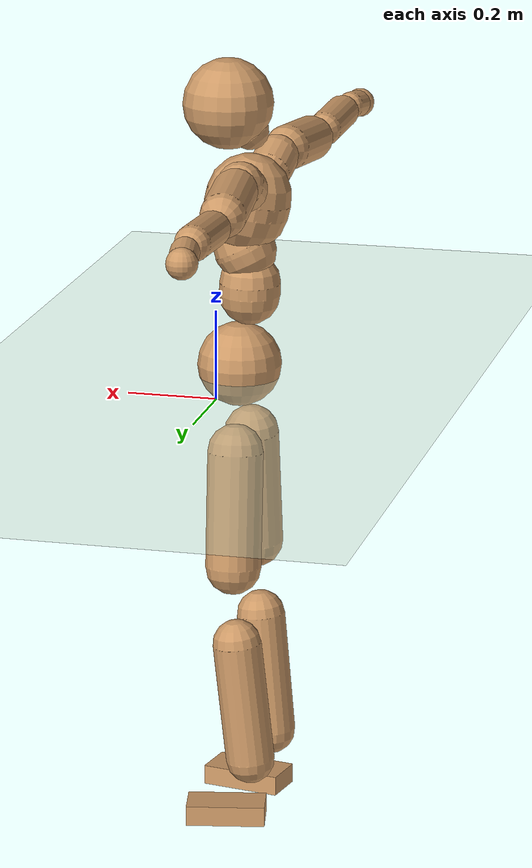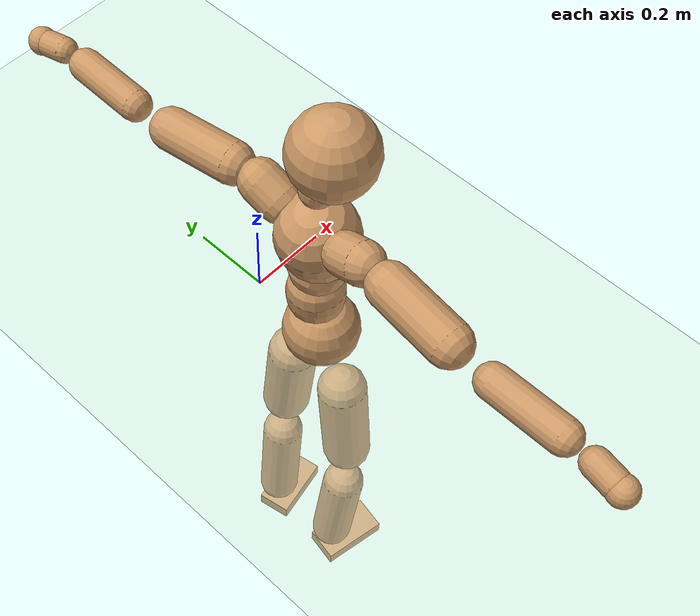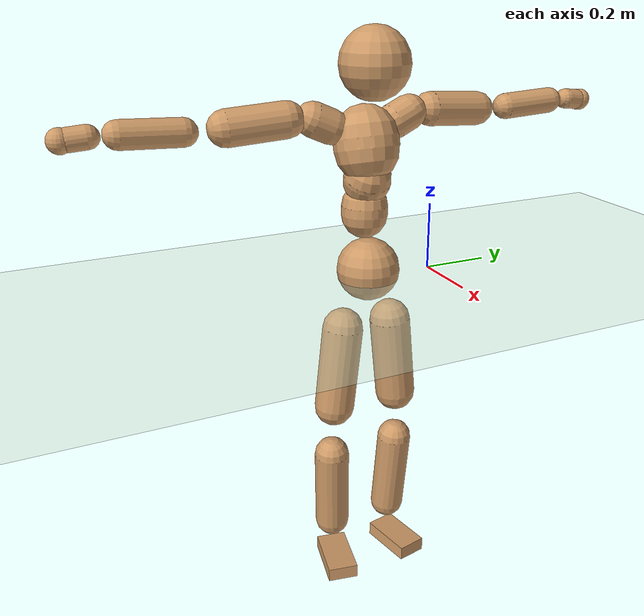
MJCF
<mujoco model="humanoid">
  <compiler coordinate="local" angle="radian"/>
  <default>
    <joint damping="0.0" armature="0.01" stiffness="0.0" limited="true"/>
    <geom conaffinity="1" condim="3" contype="7" margin="0.001" rgba="0.8 0.6 .4 1"/>
  </default>
  <asset>
    <texture type="skybox" builtin="gradient" rgb1=".4 .5 .6" rgb2="0 0 0" width="100" height="100"/>
    <texture builtin="flat" height="1278" mark="cross" markrgb="1 1 1" name="texgeom" random="0.01" rgb1="0.8 0.6 0.4" rgb2="0.8 0.6 0.4" type="cube" width="127"/>
    <texture builtin="checker" height="100" name="texplane" rgb1="0 0 0" rgb2="0.8 0.8 0.8" type="2d" width="100"/>
    <material name="MatPlane" reflectance="0.5" shininess="1" specular="1" texrepeat="60 60" texture="texplane"/>
    <material name="geom" texture="texgeom" texuniform="true"/>
  </asset>
  <worldbody>
    <light cutoff="100" diffuse="1 1 1" dir="-0 0 -1.3" directional="true" exponent="1" pos="0 0 1.3" specular=".1 .1 .1"/>
    <geom conaffinity="1" condim="3" name="floor" pos="0 0 0" rgba="0.8 0.9 0.8 1" size="100 100 .2" type="plane" material="MatPlane"/>
    <body name="Pelvis" pos="0.0004 -0.207 0.0259">
      <freejoint name="Pelvis"/>
      <geom type="sphere" contype="1" conaffinity="1" density="500" size="0.0945" pos="0.0000 0.0000 0.0000" name="Pelvis"/>
      <body name="L_Hip" pos="-0.0108 0.0737 -0.0943">
        <joint name="L_Hip_x" type="hinge" pos="0 0 0" axis="1 0 0" stiffness="800" damping="80" armature="0.02" range="-180.0000 180.0000"/>
        <joint name="L_Hip_y" type="hinge" pos="0 0 0" axis="0 1 0" stiffness="800" damping="80" armature="0.02" range="-180.0000 180.0000"/>
        <joint name="L_Hip_z" type="hinge" pos="0 0 0" axis="0 0 1" stiffness="800" damping="80" armature="0.02" range="-180.0000 180.0000"/>
        <geom type="capsule" contype="1" conaffinity="1" density="500" fromto="-0.0004 0.0085 -0.0869 -0.0015 0.0339 -0.3476" size="0.063" name="L_Hip"/>
        <body name="L_Knee" pos="-0.0019 0.0424 -0.4346">
          <joint name="L_Knee_x" type="hinge" pos="0 0 0" axis="1 0 0" stiffness="800" damping="80" armature="0.02" range="-180.0000 180.0000"/>
          <joint name="L_Knee_y" type="hinge" pos="0 0 0" axis="0 1 0" stiffness="800" damping="80" armature="0.02" range="-180.0000 180.0000"/>
          <joint name="L_Knee_z" type="hinge" pos="0 0 0" axis="0 0 1" stiffness="800" damping="80" armature="0.02" range="-180.0000 180.0000"/>
          <geom type="capsule" contype="1" conaffinity="1" density="500" fromto="-0.0096 -0.0026 -0.0925 -0.0384 -0.0105 -0.3700" size="0.055" name="L_Knee"/>
          <body name="L_Ankle" pos="-0.048 -0.0131 -0.4625">
            <joint name="L_Ankle_x" type="hinge" pos="0 0 0" axis="1 0 0" stiffness="800" damping="80" armature="0.02" range="-180.0000 180.0000"/>
            <joint name="L_Ankle_y" type="hinge" pos="0 0 0" axis="0 1 0" stiffness="800" damping="80" armature="0.02" range="-180.0000 180.0000"/>
            <joint name="L_Ankle_z" type="hinge" pos="0 0 0" axis="0 0 1" stiffness="800" damping="80" armature="0.02" range="-180.0000 180.0000"/>
            <geom type="box" contype="1" conaffinity="1" density="500" pos="0.0635 0.0125 -0.0322" size="0.0889 0.0466 0.0227" quat="0.9953 0.0000 0.0000 0.0970" name="L_Ankle"/>
            <body name="L_Toe" pos="0.127 0.025 -0.0644">
              <joint name="L_Toe_x" type="hinge" pos="0 0 0" axis="1 0 0" stiffness="500" damping="50" armature="0.02" range="-180.0000 180.0000"/>
              <joint name="L_Toe_y" type="hinge" pos="0 0 0" axis="0 1 0" stiffness="500" damping="50" armature="0.02" range="-180.0000 180.0000"/>
              <joint name="L_Toe_z" type="hinge" pos="0 0 0" axis="0 0 1" stiffness="500" damping="50" armature="0.02" range="-180.0000 180.0000"/>
              <geom type="box" contype="1" conaffinity="1" density="500" pos="0.0000 0.0000 0.0321" size="0.0009 0.0023 0.0011" quat="0.9947 0.0000 0.0000 0.1030" name="L_Toe"/>
            </body>
          </body>
        </body>
      </body>
      <body name="R_Hip" pos="-0.0063 -0.0709 -0.0929">
        <joint name="R_Hip_x" type="hinge" pos="0 0 0" axis="1 0 0" stiffness="800" damping="80" armature="0.02" range="-180.0000 180.0000"/>
        <joint name="R_Hip_y" type="hinge" pos="0 0 0" axis="0 1 0" stiffness="800" damping="80" armature="0.02" range="-180.0000 180.0000"/>
        <joint name="R_Hip_z" type="hinge" pos="0 0 0" axis="0 0 1" stiffness="800" damping="80" armature="0.02" range="-180.0000 180.0000"/>
        <geom type="capsule" contype="1" conaffinity="1" density="500" fromto="-0.0010 -0.0099 -0.0886 -0.0040 -0.0397 -0.3543" size="0.062" name="R_Hip"/>
        <body name="R_Knee" pos="-0.0049 -0.0496 -0.4428">
          <joint name="R_Knee_x" type="hinge" pos="0 0 0" axis="1 0 0" stiffness="800" damping="80" armature="0.02" range="-180.0000 180.0000"/>
          <joint name="R_Knee_y" type="hinge" pos="0 0 0" axis="0 1 0" stiffness="800" damping="80" armature="0.02" range="-180.0000 180.0000"/>
          <joint name="R_Knee_z" type="hinge" pos="0 0 0" axis="0 0 1" stiffness="800" damping="80" armature="0.02" range="-180.0000 180.0000"/>
          <geom type="capsule" contype="1" conaffinity="1" density="500" fromto="-0.0091 0.0034 -0.0926 -0.0363 0.0136 -0.3704" size="0.0554" name="R_Knee"/>
          <body name="R_Ankle" pos="-0.0454 0.0169 -0.463">
            <joint name="R_Ankle_x" type="hinge" pos="0 0 0" axis="1 0 0" stiffness="800" damping="80" armature="0.02" range="-180.0000 180.0000"/>
            <joint name="R_Ankle_y" type="hinge" pos="0 0 0" axis="0 1 0" stiffness="800" damping="80" armature="0.02" range="-180.0000 180.0000"/>
            <joint name="R_Ankle_z" type="hinge" pos="0 0 0" axis="0 0 1" stiffness="800" damping="80" armature="0.02" range="-180.0000 180.0000"/>
            <geom type="box" contype="1" conaffinity="1" density="500" pos="0.0654 -0.0124 -0.0273" size="0.091 0.0483 0.0222" quat="0.9956 0.0000 0.0000 -0.0939" name="R_Ankle"/>
            <body name="R_Toe" pos="0.1308 -0.0249 -0.0546">
              <joint name="R_Toe_x" type="hinge" pos="0 0 0" axis="1 0 0" stiffness="500" damping="50" armature="0.02" range="-180.0000 180.0000"/>
              <joint name="R_Toe_y" type="hinge" pos="0 0 0" axis="0 1 0" stiffness="500" damping="50" armature="0.02" range="-180.0000 180.0000"/>
              <joint name="R_Toe_z" type="hinge" pos="0 0 0" axis="0 0 1" stiffness="500" damping="50" armature="0.02" range="-180.0000 180.0000"/>
              <geom type="box" contype="1" conaffinity="1" density="500" pos="0.0000 0.0000 0.0301" size="0.0008 0.0024 0.0012" quat="0.9964 0.0000 0.0000 -0.0852" name="R_Toe"/>
            </body>
          </body>
        </body>
      </body>
      <body name="Torso" pos="-0.022 -0.0032 0.1083">
        <joint name="Torso_x" type="hinge" pos="0 0 0" axis="1 0 0" stiffness="1000" damping="100" armature="0.02" range="-180.0000 180.0000"/>
        <joint name="Torso_y" type="hinge" pos="0 0 0" axis="0 1 0" stiffness="1000" damping="100" armature="0.02" range="-180.0000 180.0000"/>
        <joint name="Torso_z" type="hinge" pos="0 0 0" axis="0 0 1" stiffness="1000" damping="100" armature="0.02" range="-180.0000 180.0000"/>
        <geom type="capsule" contype="1" conaffinity="1" density="500" fromto="-0.0016 0.0023 0.0796 -0.0011 0.0015 0.0531" size="0.0685" name="Torso"/>
        <body name="Spine" pos="-0.0027 0.0039 0.1327">
          <joint name="Spine_x" type="hinge" pos="0 0 0" axis="1 0 0" stiffness="1000" damping="100" armature="0.02" range="-180.0000 180.0000"/>
          <joint name="Spine_y" type="hinge" pos="0 0 0" axis="0 1 0" stiffness="1000" damping="100" armature="0.02" range="-180.0000 180.0000"/>
          <joint name="Spine_z" type="hinge" pos="0 0 0" axis="0 0 1" stiffness="1000" damping="100" armature="0.02" range="-180.0000 180.0000"/>
          <geom type="capsule" contype="1" conaffinity="1" density="500" fromto="0.0151 0.0007 0.0307 0.0100 0.0005 0.0205" size="0.0693" name="Spine"/>
          <body name="Chest" pos="0.0251 0.0012 0.0512">
            <joint name="Chest_x" type="hinge" pos="0 0 0" axis="1 0 0" stiffness="1000" damping="100" armature="0.02" range="-180.0000 180.0000"/>
            <joint name="Chest_y" type="hinge" pos="0 0 0" axis="0 1 0" stiffness="1000" damping="100" armature="0.02" range="-180.0000 180.0000"/>
            <joint name="Chest_z" type="hinge" pos="0 0 0" axis="0 0 1" stiffness="1000" damping="100" armature="0.02" range="-180.0000 180.0000"/>
            <geom type="capsule" contype="1" conaffinity="1" density="500" fromto="-0.0226 -0.0011 0.0924 -0.0151 -0.0007 0.0616" size="0.0951" name="Chest"/>
            <body name="Neck" pos="-0.0368 -0.0034 0.2227">
              <joint name="Neck_x" type="hinge" pos="0 0 0" axis="1 0 0" stiffness="500" damping="50" armature="0.02" range="-180.0000 180.0000"/>
              <joint name="Neck_y" type="hinge" pos="0 0 0" axis="0 1 0" stiffness="500" damping="50" armature="0.02" range="-180.0000 180.0000"/>
              <joint name="Neck_z" type="hinge" pos="0 0 0" axis="0 0 1" stiffness="500" damping="50" armature="0.02" range="-180.0000 180.0000"/>
              <geom type="capsule" contype="1" conaffinity="1" density="500" fromto="0.0121 0.0012 0.0150 0.0482 0.0049 0.0601" size="0.0418" name="Neck"/>
              <body name="Head" pos="0.0603 0.0061 0.0752">
                <joint name="Head_x" type="hinge" pos="0 0 0" axis="1 0 0" stiffness="500" damping="50" armature="0.02" range="-180.0000 180.0000"/>
                <joint name="Head_y" type="hinge" pos="0 0 0" axis="0 1 0" stiffness="500" damping="50" armature="0.02" range="-180.0000 180.0000"/>
                <joint name="Head_z" type="hinge" pos="0 0 0" axis="0 0 1" stiffness="500" damping="50" armature="0.02" range="-180.0000 180.0000"/>
                <geom type="sphere" contype="1" conaffinity="1" density="500" size="0.1006" pos="0.0000 0.0000 0.0000" name="Head"/>
              </body>
            </body>
            <body name="L_Thorax" pos="-0.0352 0.0773 0.1209">
              <joint name="L_Thorax_x" type="hinge" pos="0 0 0" axis="1 0 0" stiffness="500" damping="50" armature="0.02" range="-180.0000 180.0000"/>
              <joint name="L_Thorax_y" type="hinge" pos="0 0 0" axis="0 1 0" stiffness="500" damping="50" armature="0.02" range="-180.0000 180.0000"/>
              <joint name="L_Thorax_z" type="hinge" pos="0 0 0" axis="0 0 1" stiffness="500" damping="50" armature="0.02" range="-180.0000 180.0000"/>
              <geom type="capsule" contype="1" conaffinity="1" density="500" fromto="-0.0012 0.0171 0.0076 -0.0048 0.0686 0.0303" size="0.0511" name="L_Thorax"/>
              <body name="L_Shoulder" pos="-0.006 0.0857 0.0378">
                <joint name="L_Shoulder_x" type="hinge" pos="0 0 0" axis="1 0 0" stiffness="500" damping="50" armature="0.02" range="-720.0000 720.0000"/>
                <joint name="L_Shoulder_y" type="hinge" pos="0 0 0" axis="0 1 0" stiffness="500" damping="50" armature="0.02" range="-720.0000 720.0000"/>
                <joint name="L_Shoulder_z" type="hinge" pos="0 0 0" axis="0 0 1" stiffness="500" damping="50" armature="0.02" range="-720.0000 720.0000"/>
                <geom type="capsule" contype="1" conaffinity="1" density="500" fromto="-0.0060 0.0575 -0.0044 -0.0238 0.2298 -0.0174" size="0.0497" name="L_Shoulder"/>
                <body name="L_Elbow" pos="-0.0298 0.2873 -0.0218">
                  <joint name="L_Elbow_x" type="hinge" pos="0 0 0" axis="1 0 0" stiffness="500" damping="50" armature="0.02" range="-720.0000 720.0000"/>
                  <joint name="L_Elbow_y" type="hinge" pos="0 0 0" axis="0 1 0" stiffness="500" damping="50" armature="0.02" range="-720.0000 720.0000"/>
                  <joint name="L_Elbow_z" type="hinge" pos="0 0 0" axis="0 0 1" stiffness="500" damping="50" armature="0.02" range="-720.0000 720.0000"/>
                  <geom type="capsule" contype="1" conaffinity="1" density="500" fromto="-0.0002 0.0541 0.0026 -0.0008 0.2164 0.0104" size="0.0388" name="L_Elbow"/>
                  <body name="L_Wrist" pos="-0.0009 0.2704 0.0129">
                    <joint name="L_Wrist_x" type="hinge" pos="0 0 0" axis="1 0 0" stiffness="300" damping="30" armature="0.02" range="-180.0000 180.0000"/>
                    <joint name="L_Wrist_y" type="hinge" pos="0 0 0" axis="0 1 0" stiffness="300" damping="30" armature="0.02" range="-180.0000 180.0000"/>
                    <joint name="L_Wrist_z" type="hinge" pos="0 0 0" axis="0 0 1" stiffness="300" damping="30" armature="0.02" range="-180.0000 180.0000"/>
                    <geom type="capsule" contype="1" conaffinity="1" density="500" fromto="-0.0028 0.0165 -0.0021 -0.0112 0.0662 -0.0083" size="0.0307" name="L_Wrist"/>
                    <body name="L_Hand" pos="-0.014 0.0827 -0.0104">
                      <joint name="L_Hand_x" type="hinge" pos="0 0 0" axis="1 0 0" stiffness="300" damping="30" armature="0.02" range="-180.0000 180.0000"/>
                      <joint name="L_Hand_y" type="hinge" pos="0 0 0" axis="0 1 0" stiffness="300" damping="30" armature="0.02" range="-180.0000 180.0000"/>
                      <joint name="L_Hand_z" type="hinge" pos="0 0 0" axis="0 0 1" stiffness="300" damping="30" armature="0.02" range="-180.0000 180.0000"/>
                      <geom type="sphere" contype="1" conaffinity="1" density="500" size="0.0332" pos="0.0000 0.0000 0.0000" name="L_Hand"/>
                    </body>
                  </body>
                </body>
              </body>
            </body>
            <body name="R_Thorax" pos="-0.041 -0.0794 0.1185">
              <joint name="R_Thorax_x" type="hinge" pos="0 0 0" axis="1 0 0" stiffness="500" damping="50" armature="0.02" range="-180.0000 180.0000"/>
              <joint name="R_Thorax_y" type="hinge" pos="0 0 0" axis="0 1 0" stiffness="500" damping="50" armature="0.02" range="-180.0000 180.0000"/>
              <joint name="R_Thorax_z" type="hinge" pos="0 0 0" axis="0 0 1" stiffness="500" damping="50" armature="0.02" range="-180.0000 180.0000"/>
              <geom type="capsule" contype="1" conaffinity="1" density="500" fromto="-0.0017 -0.0179 0.0079 -0.0068 -0.0716 0.0316" size="0.0498" name="R_Thorax"/>
              <body name="R_Shoulder" pos="-0.0085 -0.0895 0.0395">
                <joint name="R_Shoulder_x" type="hinge" pos="0 0 0" axis="1 0 0" stiffness="500" damping="50" armature="0.02" range="-720.0000 720.0000"/>
                <joint name="R_Shoulder_y" type="hinge" pos="0 0 0" axis="0 1 0" stiffness="500" damping="50" armature="0.02" range="-720.0000 720.0000"/>
                <joint name="R_Shoulder_z" type="hinge" pos="0 0 0" axis="0 0 1" stiffness="500" damping="50" armature="0.02" range="-720.0000 720.0000"/>
                <geom type="capsule" contype="1" conaffinity="1" density="500" fromto="-0.0048 -0.0562 -0.0042 -0.0193 -0.2247 -0.0169" size="0.0515" name="R_Shoulder"/>
                <body name="R_Elbow" pos="-0.0241 -0.2809 -0.0212">
                  <joint name="R_Elbow_x" type="hinge" pos="0 0 0" axis="1 0 0" stiffness="500" damping="50" armature="0.02" range="-720.0000 720.0000"/>
                  <joint name="R_Elbow_y" type="hinge" pos="0 0 0" axis="0 1 0" stiffness="500" damping="50" armature="0.02" range="-720.0000 720.0000"/>
                  <joint name="R_Elbow_z" type="hinge" pos="0 0 0" axis="0 0 1" stiffness="500" damping="50" armature="0.02" range="-720.0000 720.0000"/>
                  <geom type="capsule" contype="1" conaffinity="1" density="500" fromto="-0.0012 -0.0560 0.0020 -0.0049 -0.2241 0.0080" size="0.0393" name="R_Elbow"/>
                  <body name="R_Wrist" pos="-0.0061 -0.2802 0.01">
                    <joint name="R_Wrist_x" type="hinge" pos="0 0 0" axis="1 0 0" stiffness="300" damping="30" armature="0.02" range="-180.0000 180.0000"/>
                    <joint name="R_Wrist_y" type="hinge" pos="0 0 0" axis="0 1 0" stiffness="300" damping="30" armature="0.02" range="-180.0000 180.0000"/>
                    <joint name="R_Wrist_z" type="hinge" pos="0 0 0" axis="0 0 1" stiffness="300" damping="30" armature="0.02" range="-180.0000 180.0000"/>
                    <geom type="capsule" contype="1" conaffinity="1" density="500" fromto="-0.0022 -0.0169 -0.0015 -0.0087 -0.0674 -0.0062" size="0.0317" name="R_Wrist"/>
                    <body name="R_Hand" pos="-0.0109 -0.0843 -0.0077">
                      <joint name="R_Hand_x" type="hinge" pos="0 0 0" axis="1 0 0" stiffness="300" damping="30" armature="0.02" range="-180.0000 180.0000"/>
                      <joint name="R_Hand_y" type="hinge" pos="0 0 0" axis="0 1 0" stiffness="300" damping="30" armature="0.02" range="-180.0000 180.0000"/>
                      <joint name="R_Hand_z" type="hinge" pos="0 0 0" axis="0 0 1" stiffness="300" damping="30" armature="0.02" range="-180.0000 180.0000"/>
                      <geom type="sphere" contype="1" conaffinity="1" density="500" size="0.0337" pos="0.0000 0.0000 0.0000" name="R_Hand"/>
                    </body>
                  </body>
                </body>
              </body>
            </body>
          </body>
        </body>
      </body>
    </body>
  </worldbody>
  <actuator>
    <motor name="L_Hip_x" joint="L_Hip_x" gear="500"/>
    <motor name="L_Hip_y" joint="L_Hip_y" gear="500"/>
    <motor name="L_Hip_z" joint="L_Hip_z" gear="500"/>
    <motor name="L_Knee_x" joint="L_Knee_x" gear="500"/>
    <motor name="L_Knee_y" joint="L_Knee_y" gear="500"/>
    <motor name="L_Knee_z" joint="L_Knee_z" gear="500"/>
    <motor name="L_Ankle_x" joint="L_Ankle_x" gear="500"/>
    <motor name="L_Ankle_y" joint="L_Ankle_y" gear="500"/>
    <motor name="L_Ankle_z" joint="L_Ankle_z" gear="500"/>
    <motor name="L_Toe_x" joint="L_Toe_x" gear="500"/>
    <motor name="L_Toe_y" joint="L_Toe_y" gear="500"/>
    <motor name="L_Toe_z" joint="L_Toe_z" gear="500"/>
    <motor name="R_Hip_x" joint="R_Hip_x" gear="500"/>
    <motor name="R_Hip_y" joint="R_Hip_y" gear="500"/>
    <motor name="R_Hip_z" joint="R_Hip_z" gear="500"/>
    <motor name="R_Knee_x" joint="R_Knee_x" gear="500"/>
    <motor name="R_Knee_y" joint="R_Knee_y" gear="500"/>
    <motor name="R_Knee_z" joint="R_Knee_z" gear="500"/>
    <motor name="R_Ankle_x" joint="R_Ankle_x" gear="500"/>
    <motor name="R_Ankle_y" joint="R_Ankle_y" gear="500"/>
    <motor name="R_Ankle_z" joint="R_Ankle_z" gear="500"/>
    <motor name="R_Toe_x" joint="R_Toe_x" gear="500"/>
    <motor name="R_Toe_y" joint="R_Toe_y" gear="500"/>
    <motor name="R_Toe_z" joint="R_Toe_z" gear="500"/>
    <motor name="Torso_x" joint="Torso_x" gear="500"/>
    <motor name="Torso_y" joint="Torso_y" gear="500"/>
    <motor name="Torso_z" joint="Torso_z" gear="500"/>
    <motor name="Spine_x" joint="Spine_x" gear="500"/>
    <motor name="Spine_y" joint="Spine_y" gear="500"/>
    <motor name="Spine_z" joint="Spine_z" gear="500"/>
    <motor name="Chest_x" joint="Chest_x" gear="500"/>
    <motor name="Chest_y" joint="Chest_y" gear="500"/>
    <motor name="Chest_z" joint="Chest_z" gear="500"/>
    <motor name="Neck_x" joint="Neck_x" gear="500"/>
    <motor name="Neck_y" joint="Neck_y" gear="500"/>
    <motor name="Neck_z" joint="Neck_z" gear="500"/>
    <motor name="Head_x" joint="Head_x" gear="500"/>
    <motor name="Head_y" joint="Head_y" gear="500"/>
    <motor name="Head_z" joint="Head_z" gear="500"/>
    <motor name="L_Thorax_x" joint="L_Thorax_x" gear="500"/>
    <motor name="L_Thorax_y" joint="L_Thorax_y" gear="500"/>
    <motor name="L_Thorax_z" joint="L_Thorax_z" gear="500"/>
    <motor name="L_Shoulder_x" joint="L_Shoulder_x" gear="500"/>
    <motor name="L_Shoulder_y" joint="L_Shoulder_y" gear="500"/>
    <motor name="L_Shoulder_z" joint="L_Shoulder_z" gear="500"/>
    <motor name="L_Elbow_x" joint="L_Elbow_x" gear="500"/>
    <motor name="L_Elbow_y" joint="L_Elbow_y" gear="500"/>
    <motor name="L_Elbow_z" joint="L_Elbow_z" gear="500"/>
    <motor name="L_Wrist_x" joint="L_Wrist_x" gear="500"/>
    <motor name="L_Wrist_y" joint="L_Wrist_y" gear="500"/>
    <motor name="L_Wrist_z" joint="L_Wrist_z" gear="500"/>
    <motor name="L_Hand_x" joint="L_Hand_x" gear="500"/>
    <motor name="L_Hand_y" joint="L_Hand_y" gear="500"/>
    <motor name="L_Hand_z" joint="L_Hand_z" gear="500"/>
    <motor name="R_Thorax_x" joint="R_Thorax_x" gear="500"/>
    <motor name="R_Thorax_y" joint="R_Thorax_y" gear="500"/>
    <motor name="R_Thorax_z" joint="R_Thorax_z" gear="500"/>
    <motor name="R_Shoulder_x" joint="R_Shoulder_x" gear="500"/>
    <motor name="R_Shoulder_y" joint="R_Shoulder_y" gear="500"/>
    <motor name="R_Shoulder_z" joint="R_Shoulder_z" gear="500"/>
    <motor name="R_Elbow_x" joint="R_Elbow_x" gear="500"/>
    <motor name="R_Elbow_y" joint="R_Elbow_y" gear="500"/>
    <motor name="R_Elbow_z" joint="R_Elbow_z" gear="500"/>
    <motor name="R_Wrist_x" joint="R_Wrist_x" gear="500"/>
    <motor name="R_Wrist_y" joint="R_Wrist_y" gear="500"/>
    <motor name="R_Wrist_z" joint="R_Wrist_z" gear="500"/>
    <motor name="R_Hand_x" joint="R_Hand_x" gear="500"/>
    <motor name="R_Hand_y" joint="R_Hand_y" gear="500"/>
    <motor name="R_Hand_z" joint="R_Hand_z" gear="500"/>
  </actuator>
  <contact>
    <exclude body1="Torso" body2="Chest"/>
    <exclude body1="Head" body2="Chest"/>
    <exclude body1="R_Knee" body2="R_Toe"/>
    <exclude body1="R_Knee" body2="L_Ankle"/>
    <exclude body1="R_Knee" body2="L_Toe"/>
    <exclude body1="L_Knee" body2="L_Toe"/>
    <exclude body1="L_Knee" body2="R_Ankle"/>
    <exclude body1="L_Knee" body2="R_Toe"/>
    <exclude body1="L_Shoulder" body2="Chest"/>
    <exclude body1="R_Shoulder" body2="Chest"/>
  </contact>
  <sensor/>
  <size njmax="700" nconmax="700"/>
</mujoco>
